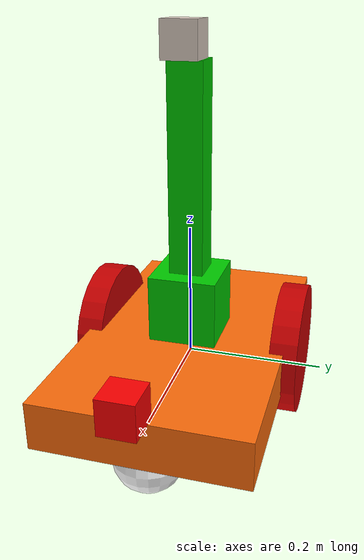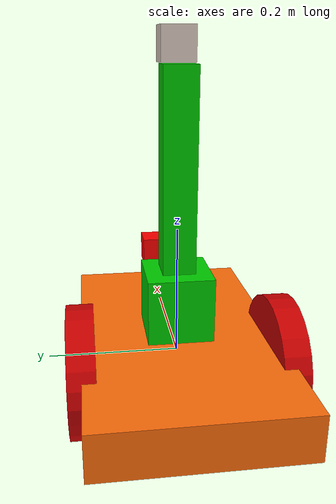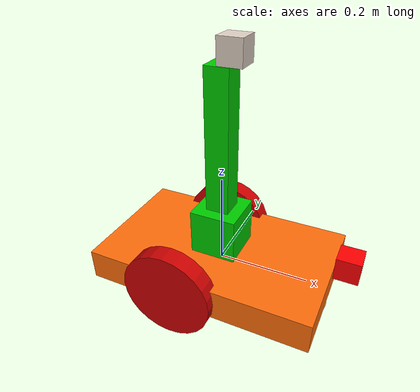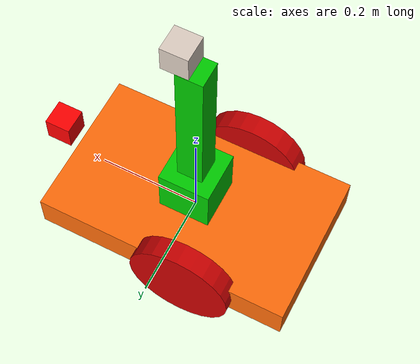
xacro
<?xml version="1.0" ?>
<robot name="robot1" xmlns:xacro="https://www.ros.org/wiki/xacro" >

  <xacro:include filename="$(find final_assignment)/urdf/materials.xacro" />
  <xacro:include filename="$(find final_assignment)/urdf/robot.gazebo" />

  <xacro:macro name="side_wheel_inertia" >
        <inertial>
            <mass value="0.2" />
            <origin rpy="0 1.5707 1.5707" xyz="0 0 0"/>
            <inertia ixx="0.000526666666667" ixy="0" ixz="0" iyy="0.000526666666667" iyz="0" izz="0.001"/>
        </inertial>
	</xacro:macro>

  <xacro:macro name="side_wheel_geometry">
      <geometry>
        <cylinder length="0.04" radius="0.1"/>
      </geometry>
  </xacro:macro>

  <!-- MAIN BODY -->
  <link name="link_chassis">
    <pose>0 0 0.1 0 0 0</pose>
    <inertial>
      <mass value="5"/>
      <origin rpy="0 0 0" xyz="0 0 0.1"/>
      <inertia ixx="0.0395416666667" ixy="0" ixz="0" iyy="0.106208333333" iyz="0" izz="0.106208333333"/>
    </inertial>
    <!-- CHASSIS -->
    <collision name="collision_chassis">
      <geometry>
        <box size="0.5 0.3 0.07"/>
      </geometry>
    </collision>
    <visual>
      <origin rpy="0 0 0" xyz="0 0 0"/>
      <geometry>
        <box size="0.5 0.3 0.07"/>
      </geometry>
      <material name="orange"/>
    </visual>
    <!-- CASTER WHEEL FRONT -->
    <collision name="caster_front_collision">
      <origin rpy=" 0 0 0" xyz="0.35 0 -0.05"/>
      <geometry>
        <sphere radius="0.05"/>
      </geometry>
    </collision>
    <visual name="caster_front_visual">
      <origin rpy=" 0 0 0" xyz="0.2 0 -0.05"/>
      <geometry>
        <sphere radius="0.05"/>
      </geometry>
      <material name="white"/>
    </visual>
  </link>

  <!-- RIGHT WHEEL -->
  <link name="link_right_wheel">
    <xacro:side_wheel_inertia />
    <collision name="link_right_wheel_collision">
      <origin rpy="0 1.5707 1.5707" xyz="0 0 0"/>
      <xacro:side_wheel_geometry />
    </collision>
    <visual name="link_right_wheel_visual">
      <origin rpy="0 1.5707 1.5707" xyz="0 0 0"/>
      <xacro:side_wheel_geometry />
      <material name="red"/>
    </visual>
  </link>

  <joint name="joint_right_wheel" type="continuous">
    <origin rpy="0 0 0" xyz="-0.05 0.15 0"/>
    <child link="link_right_wheel"/>
    <parent link="link_chassis"/>
    <axis rpy="0 0 0" xyz="0 1 0"/>
    <limit effort="10000" velocity="1000"/>
    <joint_properties damping="1.0" friction="1.0"/>
  </joint>

  <!-- LEFT WHEEL -->
  <link name="link_left_wheel">
    <xacro:side_wheel_inertia />
    <collision name="link_left_wheel_collision">
      <origin rpy="0 1.5707 1.5707" xyz="0 0 0"/>
      <xacro:side_wheel_geometry />
    </collision>
    <visual name="link_left_wheel_visual">
      <origin rpy="0 1.5707 1.5707" xyz="0 0 0"/>
      <xacro:side_wheel_geometry />
      <material name="red"/>
    </visual>
  </link>

  <joint name="joint_left_wheel" type="continuous">
    <origin rpy="0 0 0" xyz="-0.05 -0.15 0"/>
    <child link="link_left_wheel"/>
    <parent link="link_chassis"/>
    <axis rpy="0 0 0" xyz="0 1 0"/>
    <limit effort="10000" velocity="1000"/>
    <joint_properties damping="1.0" friction="1.0"/>
  </joint>

  <!-- LASER -->
  <link name="hokuyo_link">
    <inertial>
      <mass value="1e-5"/>
      <origin rpy="0 0 0" xyz="0 0 0"/>
      <inertia ixx="1e-6" ixy="0" ixz="0" iyy="1e-6" iyz="0" izz="1e-6"/>
    </inertial>
    <collision>
      <origin rpy="0 0 0" xyz="0 0 0.025"/>
      <geometry>
        <box size="0.05 0.05 0.05"/>
      </geometry>
    </collision>
    <visual>
      <origin rpy="0 0 0" xyz="0 0 0.025"/>
      <geometry>
        <box size="0.05 0.05 0.05"/>
      </geometry>
      <material name="red">
        <color rgba="1 0 0 1"/>
      </material>
    </visual>
  </link>

  <joint name="hokuyo_joint" type="fixed">
    <axis xyz="0 1 0"/>
    <origin rpy="0 0 0" xyz="0.28 0 0.05"/>
    <parent link="link_chassis"/>
    <child link="hokuyo_link"/>
  </joint>

  <!-- ARM LINK 0 -->
  <link name="arm_link_0">
    <inertial>
      <mass value="0.01"/>
      <origin rpy="0 0 0" xyz="0 0 0"/>
      <inertia ixx="1.6e-5" ixy="0" ixz="0" iyy="1.6e-5" iyz="0" izz="1.6e-5"/>
    </inertial>
    <collision>
      <origin rpy="0 0 0" xyz="0 0 0"/>
      <geometry>
        <box size="0.08 0.08 0.08"/>
      </geometry>
    </collision>
    <visual>
      <origin rpy="0 0 0" xyz="0 0 0"/>
      <geometry>
        <box size="0.10 0.10 0.10"/>
      </geometry>
      <material name="green"/>
    </visual>
  </link>

  <joint name="arm_joint_0" type="revolute">
  	<axis xyz="0 0 1"/>
  	<limit effort="1.0" lower="-3.14" upper="3.14" velocity="0.01"/>
  	<origin rpy="0 0 0" xyz="0 0 0.086"/>
  	<parent link="link_chassis"/>
  	<child link="arm_link_0"/>
  </joint>

  <!-- ARM LINK 1-->
  <link name="arm_link_1">
    <inertial>
      <mass value="0.015"/>
      <origin rpy="0 0 0" xyz="0 0 0.15"/>
      <inertia ixx="1.1e-4" ixy="0" ixz="0" iyy="1.1e-4" iyz="0" izz="6.25e-6"/>
    </inertial>
    <collision>
      <origin rpy="0 0 0" xyz="0 0 0.15"/>
      <geometry>
        <box size="0.05 0.05 0.2"/>
      </geometry>
    </collision>
    <visual>
      <origin rpy="0 0 0" xyz="0 0 0.15"/>
      <geometry>
        <box size="0.05 0.05 0.3"/>
      </geometry>
      <material name="green"/>
    </visual>
  </link>

  <joint name="arm_joint_1" type="revolute">
  	<axis xyz="0 1 0"/>
  	<limit effort="1000.0" lower="-1.2" upper="1.2" velocity="0.01"/>
  	<origin rpy="0 0 0" xyz="0 0 0.051"/>
  	<parent link="arm_link_0"/>
  	<child link="arm_link_1"/>
  </joint>

  <!-- CAMERA LINK -->
  <link name="camera_link">
    <inertial>
      <mass value="0.01"/>
      <origin rpy="0 0 0" xyz="0 0 0"/>
      <inertia ixx="4.1e-6" ixy="0" ixz="0" iyy="4.1e-6" iyz="0" izz="4.1e-6"/>
    </inertial>
    <collision>
      <origin rpy="0 0 0" xyz="0 0 0"/>
      <geometry>
        <box size="0.05 0.05 0.05"/>
      </geometry>
    </collision>
    <visual>
      <origin rpy="0 0 0" xyz="0 0 0"/>
      <geometry>
        <box size="0.05 0.05 0.05"/>
      </geometry>
      <material name="brown"/>
    </visual>
  </link>

  <joint name="camera_joint" type="revolute">
  	<axis xyz="0 1 0"/>
  	<limit effort="1000.0" lower="-1.2" upper="1.2" velocity="0.01"/>
  	<origin rpy="0 0 0" xyz="0.025 0 0.326"/>
  	<parent link="arm_link_1"/>
  	<child link="camera_link"/>
  </joint>

  <!-- DEFINING THE TRANSMISSIONS -->

  <transmission name="arm_joint_0_trans">
    <type>transmission_interface/SimpleTransmission</type>
    <joint name="arm_joint_0">
      <hardwareInterface>hardware_interface/EffortJointInterface</hardwareInterface>
    </joint>
    <actuator name="motor0">
      <hardwareInterface>hardware_interface/EffortJointInterface</hardwareInterface>
      <mechanicalInterface>1</mechanicalInterface>
    </actuator>
  </transmission>

  <transmission name="arm_joint_1_trans">
    <type>transmission_interface/SimpleTransmission</type>
    <joint name="arm_joint_1">
      <hardwareInterface>hardware_interface/EffortJointInterface</hardwareInterface>
    </joint>
    <actuator name="motor1">
      <hardwareInterface>hardware_interface/EffortJointInterface</hardwareInterface>
      <mechanicalInterface>1</mechanicalInterface>
    </actuator>
  </transmission>

  <transmission name="camera_joint_trans">
    <type>transmission_interface/SimpleTransmission</type>
    <joint name="camera_joint">
      <hardwareInterface>hardware_interface/EffortJointInterface</hardwareInterface>
    </joint>
    <actuator name="motor2">
      <hardwareInterface>hardware_interface/EffortJointInterface</hardwareInterface>
      <mechanicalInterface>1</mechanicalInterface>
    </actuator>
  </transmission>

</robot>

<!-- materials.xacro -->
<robot xmlns:xacro="https://www.ros.org/wiki/xacro" >
  <!-- A simple list of materials that we can import into the robot description -->
  <!-- file and use to color the visual elements. -->
  <material name="black">
    <color rgba="0.0 0.0 0.0 1.0"/>
  </material>
  <material name="blue">
    <color rgba="0.0 0.0 0.8 1.0"/>
  </material>
  <material name="green">
    <color rgba="0.0 0.8 0.0 1.0"/>
  </material>
  <material name="grey">
    <color rgba="0.2 0.2 0.2 1.0"/>
  </material>
  <material name="orange">
    <color rgba="1.0 0.423529411765 0.0392156862745 1.0"/>
  </material>
  <material name="brown">
    <color rgba="0.870588235294 0.811764705882 0.764705882353 1.0"/>
  </material>
  <material name="red">
    <color rgba="0.8 0.0 0.0 1.0"/>
  </material>
  <material name="white">
    <color rgba="1.0 1.0 1.0 1.0"/>
  </material>

</robot>
